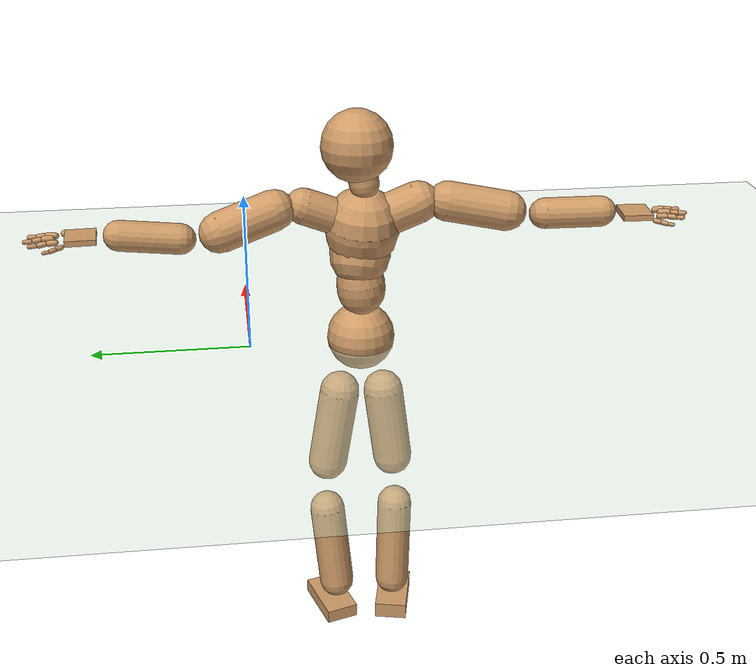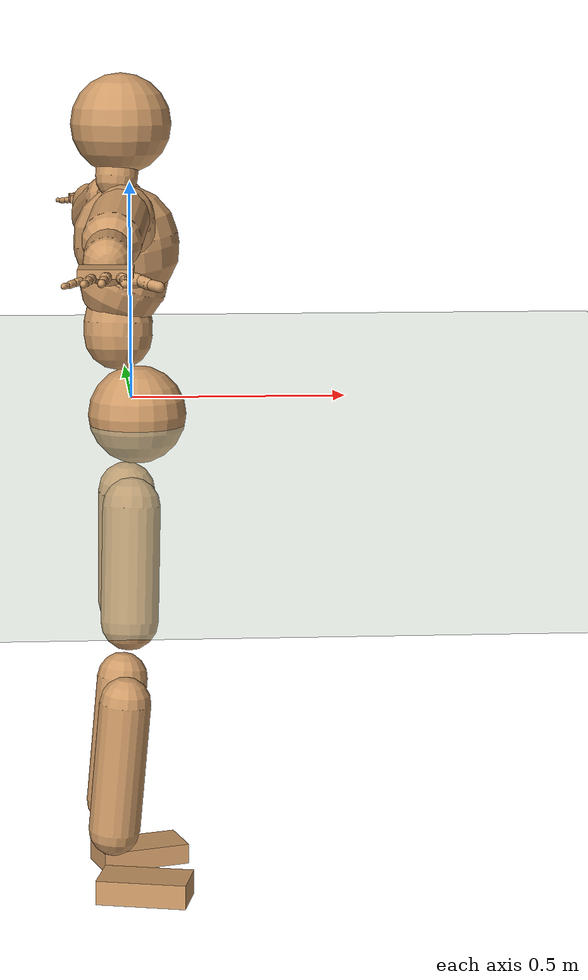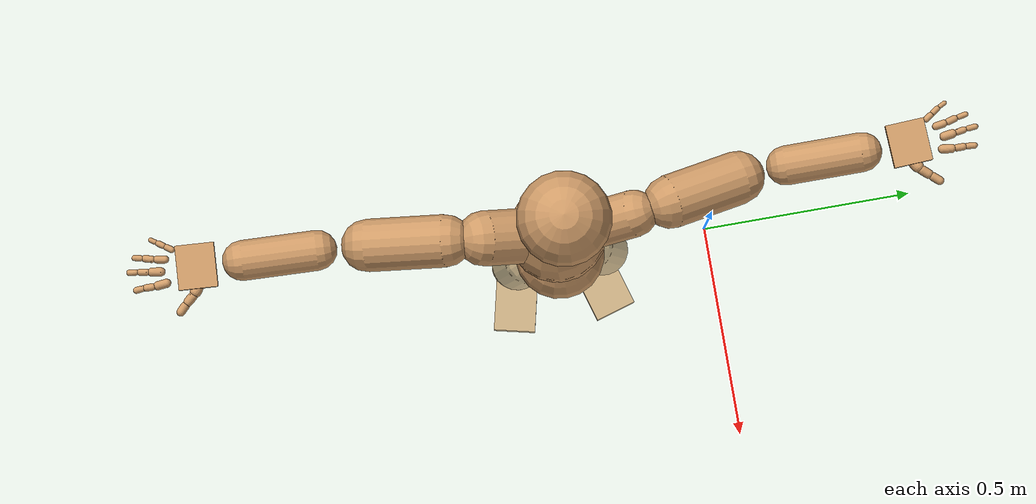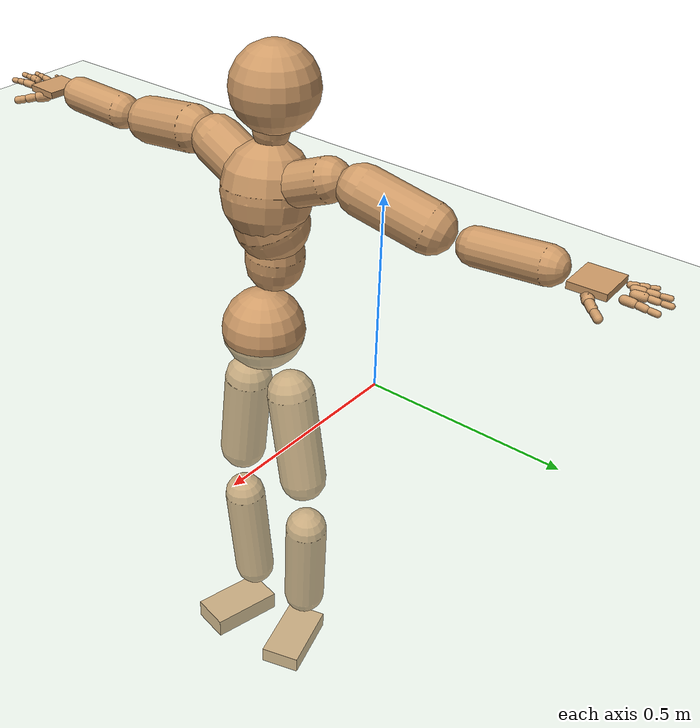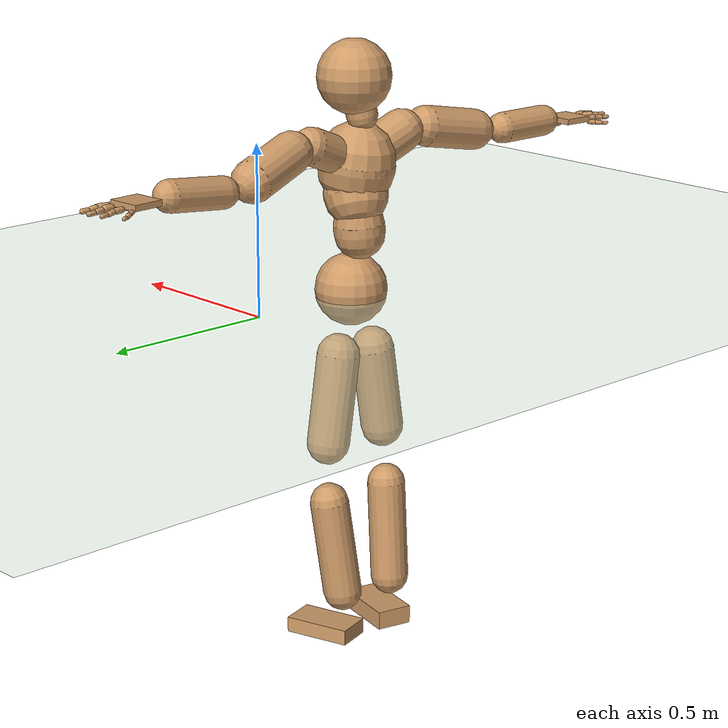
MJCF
<mujoco model="humanoid">
  <compiler coordinate="local" angle="radian"/>
  <default>
    <joint damping="0.0" armature="0.01" stiffness="0.0" limited="true"/>
    <geom conaffinity="1" condim="3" contype="7" margin="0.001" rgba="0.8 0.6 .4 1"/>
  </default>
  <asset>
    <texture type="skybox" builtin="gradient" rgb1=".4 .5 .6" rgb2="0 0 0" width="100" height="100"/>
    <texture builtin="flat" height="1278" mark="cross" markrgb="1 1 1" name="texgeom" random="0.01" rgb1="0.8 0.6 0.4" rgb2="0.8 0.6 0.4" type="cube" width="127"/>
    <texture builtin="checker" height="100" name="texplane" rgb1="0 0 0" rgb2="0.8 0.8 0.8" type="2d" width="100"/>
    <material name="MatPlane" reflectance="0.5" shininess="1" specular="1" texrepeat="60 60" texture="texplane"/>
    <material name="geom" texture="texgeom" texuniform="true"/>
  </asset>
  <worldbody>
    <light cutoff="100" diffuse="1 1 1" dir="-0 0 -1.3" directional="true" exponent="1" pos="0 0 1.3" specular=".1 .1 .1"/>
    <geom conaffinity="1" condim="3" name="floor" pos="0 0 0" rgba="0.8 0.9 0.8 1" size="100 100 .2" type="plane" material="MatPlane"/>
    <body name="Pelvis" pos="0.0014 -0.3528 0.0197">
      <freejoint name="Pelvis"/>
      <geom type="sphere" contype="1" conaffinity="1" density="500" size="0.1079" pos="0.0000 0.0000 0.0000" name="Pelvis"/>
      <body name="L_Hip" pos="-0.0219 0.0578 -0.096">
        <joint name="L_Hip_x" type="hinge" pos="0 0 0" axis="1 0 0" stiffness="800" damping="80" armature="0.02" range="-180.0000 180.0000"/>
        <joint name="L_Hip_y" type="hinge" pos="0 0 0" axis="0 1 0" stiffness="800" damping="80" armature="0.02" range="-180.0000 180.0000"/>
        <joint name="L_Hip_z" type="hinge" pos="0 0 0" axis="0 0 1" stiffness="800" damping="80" armature="0.02" range="-180.0000 180.0000"/>
        <geom type="capsule" contype="1" conaffinity="1" density="500" fromto="-0.0005 0.0143 -0.0877 -0.0019 0.0572 -0.3508" size="0.0635" name="L_Hip"/>
        <body name="L_Knee" pos="-0.0024 0.0715 -0.4385">
          <joint name="L_Knee_x" type="hinge" pos="0 0 0" axis="1 0 0" stiffness="800" damping="80" armature="0.02" range="-180.0000 180.0000"/>
          <joint name="L_Knee_y" type="hinge" pos="0 0 0" axis="0 1 0" stiffness="800" damping="80" armature="0.02" range="-180.0000 180.0000"/>
          <joint name="L_Knee_z" type="hinge" pos="0 0 0" axis="0 0 1" stiffness="800" damping="80" armature="0.02" range="-180.0000 180.0000"/>
          <geom type="capsule" contype="1" conaffinity="1" density="500" fromto="-0.0090 -0.0089 -0.0953 -0.0358 -0.0355 -0.3810" size="0.0576" name="L_Knee"/>
          <body name="L_Ankle" pos="-0.0448 -0.0444 -0.4763">
            <joint name="L_Ankle_x" type="hinge" pos="0 0 0" axis="1 0 0" stiffness="800" damping="80" armature="0.02" range="-180.0000 180.0000"/>
            <joint name="L_Ankle_y" type="hinge" pos="0 0 0" axis="0 1 0" stiffness="800" damping="80" armature="0.02" range="-180.0000 180.0000"/>
            <joint name="L_Ankle_z" type="hinge" pos="0 0 0" axis="0 0 1" stiffness="800" damping="80" armature="0.02" range="-180.0000 180.0000"/>
            <geom type="box" contype="1" conaffinity="1" density="500" pos="0.0724 0.0216 -0.0341" size="0.1013 0.0543 0.023" quat="0.9895 0.0000 0.0000 0.1445" name="L_Ankle"/>
            <body name="L_Toe" pos="0.1447 0.0432 -0.0682">
              <joint name="L_Toe_x" type="hinge" pos="0 0 0" axis="1 0 0" stiffness="500" damping="50" armature="0.02" range="-180.0000 180.0000"/>
              <joint name="L_Toe_y" type="hinge" pos="0 0 0" axis="0 1 0" stiffness="500" damping="50" armature="0.02" range="-180.0000 180.0000"/>
              <joint name="L_Toe_z" type="hinge" pos="0 0 0" axis="0 0 1" stiffness="500" damping="50" armature="0.02" range="-180.0000 180.0000"/>
              <geom type="box" contype="1" conaffinity="1" density="500" pos="0.0000 0.0000 0.0336" size="0.0011 0.0026 0.0011" quat="0.9889 0.0000 0.0000 0.1488" name="L_Toe"/>
            </body>
          </body>
        </body>
      </body>
      <body name="R_Hip" pos="-0.014 -0.0602 -0.1075">
        <joint name="R_Hip_x" type="hinge" pos="0 0 0" axis="1 0 0" stiffness="800" damping="80" armature="0.02" range="-180.0000 180.0000"/>
        <joint name="R_Hip_y" type="hinge" pos="0 0 0" axis="0 1 0" stiffness="800" damping="80" armature="0.02" range="-180.0000 180.0000"/>
        <joint name="R_Hip_z" type="hinge" pos="0 0 0" axis="0 0 1" stiffness="800" damping="80" armature="0.02" range="-180.0000 180.0000"/>
        <geom type="capsule" contype="1" conaffinity="1" density="500" fromto="-0.0023 -0.0108 -0.0839 -0.0092 -0.0433 -0.3355" size="0.0634" name="R_Hip"/>
        <body name="R_Knee" pos="-0.0115 -0.0541 -0.4194">
          <joint name="R_Knee_x" type="hinge" pos="0 0 0" axis="1 0 0" stiffness="800" damping="80" armature="0.02" range="-180.0000 180.0000"/>
          <joint name="R_Knee_y" type="hinge" pos="0 0 0" axis="0 1 0" stiffness="800" damping="80" armature="0.02" range="-180.0000 180.0000"/>
          <joint name="R_Knee_z" type="hinge" pos="0 0 0" axis="0 0 1" stiffness="800" damping="80" armature="0.02" range="-180.0000 180.0000"/>
          <geom type="capsule" contype="1" conaffinity="1" density="500" fromto="-0.0086 0.0032 -0.0984 -0.0344 0.0128 -0.3935" size="0.0571" name="R_Knee"/>
          <body name="R_Ankle" pos="-0.043 0.0159 -0.4919">
            <joint name="R_Ankle_x" type="hinge" pos="0 0 0" axis="1 0 0" stiffness="800" damping="80" armature="0.02" range="-180.0000 180.0000"/>
            <joint name="R_Ankle_y" type="hinge" pos="0 0 0" axis="0 1 0" stiffness="800" damping="80" armature="0.02" range="-180.0000 180.0000"/>
            <joint name="R_Ankle_z" type="hinge" pos="0 0 0" axis="0 0 1" stiffness="800" damping="80" armature="0.02" range="-180.0000 180.0000"/>
            <geom type="box" contype="1" conaffinity="1" density="500" pos="0.0759 -0.0175 -0.0331" size="0.1013 0.0543 0.0276" quat="0.9936 0.0000 0.0000 -0.1129" name="R_Ankle"/>
            <body name="R_Toe" pos="0.1517 -0.0349 -0.0663">
              <joint name="R_Toe_x" type="hinge" pos="0 0 0" axis="1 0 0" stiffness="500" damping="50" armature="0.02" range="-180.0000 180.0000"/>
              <joint name="R_Toe_y" type="hinge" pos="0 0 0" axis="0 1 0" stiffness="500" damping="50" armature="0.02" range="-180.0000 180.0000"/>
              <joint name="R_Toe_z" type="hinge" pos="0 0 0" axis="0 0 1" stiffness="500" damping="50" armature="0.02" range="-180.0000 180.0000"/>
              <geom type="box" contype="1" conaffinity="1" density="500" pos="0.0000 0.0000 0.0280" size="0.0011 0.0026 0.0011" quat="0.9944 0.0000 0.0000 -0.1053" name="R_Toe"/>
            </body>
          </body>
        </body>
      </body>
      <body name="Torso" pos="-0.0416 -0.0012 0.1154">
        <joint name="Torso_x" type="hinge" pos="0 0 0" axis="1 0 0" stiffness="1000" damping="100" armature="0.02" range="-180.0000 180.0000"/>
        <joint name="Torso_y" type="hinge" pos="0 0 0" axis="0 1 0" stiffness="1000" damping="100" armature="0.02" range="-180.0000 180.0000"/>
        <joint name="Torso_z" type="hinge" pos="0 0 0" axis="0 0 1" stiffness="1000" damping="100" armature="0.02" range="-180.0000 180.0000"/>
        <geom type="capsule" contype="1" conaffinity="1" density="500" fromto="0.0016 0.0067 0.0895 0.0010 0.0044 0.0597" size="0.0754" name="Torso"/>
        <body name="Spine" pos="0.0026 0.0111 0.1492">
          <joint name="Spine_x" type="hinge" pos="0 0 0" axis="1 0 0" stiffness="1000" damping="100" armature="0.02" range="-180.0000 180.0000"/>
          <joint name="Spine_y" type="hinge" pos="0 0 0" axis="0 1 0" stiffness="1000" damping="100" armature="0.02" range="-180.0000 180.0000"/>
          <joint name="Spine_z" type="hinge" pos="0 0 0" axis="0 0 1" stiffness="1000" damping="100" armature="0.02" range="-180.0000 180.0000"/>
          <geom type="capsule" contype="1" conaffinity="1" density="500" fromto="0.0149 -0.0059 0.0347 0.0100 -0.0039 0.0231" size="0.0948" name="Spine"/>
          <body name="Chest" pos="0.0249 -0.0099 0.0579">
            <joint name="Chest_x" type="hinge" pos="0 0 0" axis="1 0 0" stiffness="1000" damping="100" armature="0.02" range="-180.0000 180.0000"/>
            <joint name="Chest_y" type="hinge" pos="0 0 0" axis="0 1 0" stiffness="1000" damping="100" armature="0.02" range="-180.0000 180.0000"/>
            <joint name="Chest_z" type="hinge" pos="0 0 0" axis="0 0 1" stiffness="1000" damping="100" armature="0.02" range="-180.0000 180.0000"/>
            <geom type="capsule" contype="1" conaffinity="1" density="500" fromto="-0.0091 -0.0032 0.0646 -0.0060 -0.0021 0.0430" size="0.1143" name="Chest"/>
            <body name="Neck" pos="-0.0306 -0.0112 0.1671">
              <joint name="Neck_x" type="hinge" pos="0 0 0" axis="1 0 0" stiffness="500" damping="50" armature="0.02" range="-180.0000 180.0000"/>
              <joint name="Neck_y" type="hinge" pos="0 0 0" axis="0 1 0" stiffness="500" damping="50" armature="0.02" range="-180.0000 180.0000"/>
              <joint name="Neck_z" type="hinge" pos="0 0 0" axis="0 0 1" stiffness="500" damping="50" armature="0.02" range="-180.0000 180.0000"/>
              <geom type="capsule" contype="1" conaffinity="1" density="500" fromto="0.0027 0.0051 0.0286 0.0107 0.0204 0.1144" size="0.0456" name="Neck"/>
              <body name="Head" pos="0.0134 0.0255 0.143">
                <joint name="Head_x" type="hinge" pos="0 0 0" axis="1 0 0" stiffness="500" damping="50" armature="0.02" range="-180.0000 180.0000"/>
                <joint name="Head_y" type="hinge" pos="0 0 0" axis="0 1 0" stiffness="500" damping="50" armature="0.02" range="-180.0000 180.0000"/>
                <joint name="Head_z" type="hinge" pos="0 0 0" axis="0 0 1" stiffness="500" damping="50" armature="0.02" range="-180.0000 180.0000"/>
                <geom type="sphere" contype="1" conaffinity="1" density="500" size="0.1090" pos="0.0000 0.0000 0.0000" name="Head"/>
              </body>
            </body>
            <body name="L_Thorax" pos="-0.0055 0.0474 0.0777">
              <joint name="L_Thorax_x" type="hinge" pos="0 0 0" axis="1 0 0" stiffness="500" damping="50" armature="0.02" range="-180.0000 180.0000"/>
              <joint name="L_Thorax_y" type="hinge" pos="0 0 0" axis="0 1 0" stiffness="500" damping="50" armature="0.02" range="-180.0000 180.0000"/>
              <joint name="L_Thorax_z" type="hinge" pos="0 0 0" axis="0 0 1" stiffness="500" damping="50" armature="0.02" range="-180.0000 180.0000"/>
              <geom type="capsule" contype="1" conaffinity="1" density="500" fromto="-0.0025 0.0323 0.0132 -0.0100 0.1291 0.0527" size="0.0551" name="L_Thorax"/>
              <body name="L_Shoulder" pos="-0.0125 0.1614 0.0659">
                <joint name="L_Shoulder_x" type="hinge" pos="0 0 0" axis="1 0 0" stiffness="500" damping="50" armature="0.02" range="-180.0000 180.0000"/>
                <joint name="L_Shoulder_y" type="hinge" pos="0 0 0" axis="0 1 0" stiffness="500" damping="50" armature="0.02" range="-180.0000 180.0000"/>
                <joint name="L_Shoulder_z" type="hinge" pos="0 0 0" axis="0 0 1" stiffness="500" damping="50" armature="0.02" range="-180.0000 180.0000"/>
                <geom type="capsule" contype="1" conaffinity="1" density="500" fromto="-0.0106 0.0552 -0.0170 -0.0424 0.2208 -0.0679" size="0.0621" name="L_Shoulder"/>
                <body name="L_Elbow" pos="-0.053 0.276 -0.0849">
                  <joint name="L_Elbow_x" type="hinge" pos="0 0 0" axis="1 0 0" stiffness="500" damping="50" armature="0.02" range="-720.0000 720.0000"/>
                  <joint name="L_Elbow_y" type="hinge" pos="0 0 0" axis="0 1 0" stiffness="500" damping="50" armature="0.02" range="-720.0000 720.0000"/>
                  <joint name="L_Elbow_z" type="hinge" pos="0 0 0" axis="0 0 1" stiffness="500" damping="50" armature="0.02" range="-720.0000 720.0000"/>
                  <geom type="capsule" contype="1" conaffinity="1" density="500" fromto="0.0004 0.0594 0.0060 0.0016 0.2375 0.0240" size="0.0458" name="L_Elbow"/>
                  <body name="L_Wrist" pos="0.002 0.2969 0.03">
                    <joint name="L_Wrist_x" type="hinge" pos="0 0 0" axis="1 0 0" stiffness="300" damping="30" armature="0.02" range="-180.0000 180.0000"/>
                    <joint name="L_Wrist_y" type="hinge" pos="0 0 0" axis="0 1 0" stiffness="300" damping="30" armature="0.02" range="-180.0000 180.0000"/>
                    <joint name="L_Wrist_z" type="hinge" pos="0 0 0" axis="0 0 1" stiffness="300" damping="30" armature="0.02" range="-180.0000 180.0000"/>
                    <geom type="box" contype="1" conaffinity="1" density="500" pos="-0.0026 0.0502 -0.0057" size="0.0452 0.0498 0.0086" quat="0.7255 0.0000 0.0000 -0.6883" name="L_Wrist"/>
                    <body name="L_Index1" pos="0.0234 0.1175 -0.0081">
                      <joint name="L_Index1_x" type="hinge" pos="0 0 0" axis="1 0 0" stiffness="100" damping="10" armature="0.02" range="-180.0000 180.0000"/>
                      <joint name="L_Index1_y" type="hinge" pos="0 0 0" axis="0 1 0" stiffness="100" damping="10" armature="0.02" range="-180.0000 180.0000"/>
                      <joint name="L_Index1_z" type="hinge" pos="0 0 0" axis="0 0 1" stiffness="100" damping="10" armature="0.02" range="-180.0000 180.0000"/>
                      <geom type="capsule" contype="1" conaffinity="1" density="500" fromto="0.0008 0.0070 0.0004 0.0031 0.0282 0.0014" size="0.0102" name="L_Index1"/>
                      <body name="L_Index2" pos="0.0038 0.0352 0.0018">
                        <joint name="L_Index2_x" type="hinge" pos="0 0 0" axis="1 0 0" stiffness="100" damping="10" armature="0.02" range="-180.0000 180.0000"/>
                        <joint name="L_Index2_y" type="hinge" pos="0 0 0" axis="0 1 0" stiffness="100" damping="10" armature="0.02" range="-180.0000 180.0000"/>
                        <joint name="L_Index2_z" type="hinge" pos="0 0 0" axis="0 0 1" stiffness="100" damping="10" armature="0.02" range="-180.0000 180.0000"/>
                        <geom type="capsule" contype="1" conaffinity="1" density="500" fromto="-0.0001 0.0050 -0.0006 -0.0002 0.0200 -0.0023" size="0.0083" name="L_Index2"/>
                        <body name="L_Index3" pos="-0.0003 0.0249 -0.0029">
                          <joint name="L_Index3_x" type="hinge" pos="0 0 0" axis="1 0 0" stiffness="100" damping="10" armature="0.02" range="-180.0000 180.0000"/>
                          <joint name="L_Index3_y" type="hinge" pos="0 0 0" axis="0 1 0" stiffness="100" damping="10" armature="0.02" range="-180.0000 180.0000"/>
                          <joint name="L_Index3_z" type="hinge" pos="0 0 0" axis="0 0 1" stiffness="100" damping="10" armature="0.02" range="-180.0000 180.0000"/>
                          <geom type="capsule" contype="1" conaffinity="1" density="500" fromto="0.0003 0.0054 -0.0002 0.0014 0.0216 -0.0007" size="0.0072" name="L_Index3"/>
                        </body>
                      </body>
                    </body>
                    <body name="L_Middle1" pos="-0.0028 0.1261 -0.0052">
                      <joint name="L_Middle1_x" type="hinge" pos="0 0 0" axis="1 0 0" stiffness="100" damping="10" armature="0.02" range="-180.0000 180.0000"/>
                      <joint name="L_Middle1_y" type="hinge" pos="0 0 0" axis="0 1 0" stiffness="100" damping="10" armature="0.02" range="-180.0000 180.0000"/>
                      <joint name="L_Middle1_z" type="hinge" pos="0 0 0" axis="0 0 1" stiffness="100" damping="10" armature="0.02" range="-180.0000 180.0000"/>
                      <geom type="capsule" contype="1" conaffinity="1" density="500" fromto="-0.0009 0.0068 0.0001 -0.0037 0.0271 0.0004" size="0.0103" name="L_Middle1"/>
                      <body name="L_Middle2" pos="-0.0046 0.0338 0.0005">
                        <joint name="L_Middle2_x" type="hinge" pos="0 0 0" axis="1 0 0" stiffness="100" damping="10" armature="0.02" range="-180.0000 180.0000"/>
                        <joint name="L_Middle2_y" type="hinge" pos="0 0 0" axis="0 1 0" stiffness="100" damping="10" armature="0.02" range="-180.0000 180.0000"/>
                        <joint name="L_Middle2_z" type="hinge" pos="0 0 0" axis="0 0 1" stiffness="100" damping="10" armature="0.02" range="-180.0000 180.0000"/>
                        <geom type="capsule" contype="1" conaffinity="1" density="500" fromto="-0.0009 0.0052 -0.0006 -0.0037 0.0208 -0.0023" size="0.0076" name="L_Middle2"/>
                        <body name="L_Middle3" pos="-0.0047 0.026 -0.0029">
                          <joint name="L_Middle3_x" type="hinge" pos="0 0 0" axis="1 0 0" stiffness="100" damping="10" armature="0.02" range="-180.0000 180.0000"/>
                          <joint name="L_Middle3_y" type="hinge" pos="0 0 0" axis="0 1 0" stiffness="100" damping="10" armature="0.02" range="-180.0000 180.0000"/>
                          <joint name="L_Middle3_z" type="hinge" pos="0 0 0" axis="0 0 1" stiffness="100" damping="10" armature="0.02" range="-180.0000 180.0000"/>
                          <geom type="capsule" contype="1" conaffinity="1" density="500" fromto="-0.0005 0.0056 -0.0002 -0.0021 0.0224 -0.0007" size="0.0068" name="L_Middle3"/>
                        </body>
                      </body>
                    </body>
                    <body name="L_Pinky1" pos="-0.0481 0.0977 -0.0147">
                      <joint name="L_Pinky1_x" type="hinge" pos="0 0 0" axis="1 0 0" stiffness="100" damping="10" armature="0.02" range="-180.0000 180.0000"/>
                      <joint name="L_Pinky1_y" type="hinge" pos="0 0 0" axis="0 1 0" stiffness="100" damping="10" armature="0.02" range="-180.0000 180.0000"/>
                      <joint name="L_Pinky1_z" type="hinge" pos="0 0 0" axis="0 0 1" stiffness="100" damping="10" armature="0.02" range="-180.0000 180.0000"/>
                      <geom type="capsule" contype="1" conaffinity="1" density="500" fromto="-0.0026 0.0036 -0.0004 -0.0103 0.0144 -0.0014" size="0.0074" name="L_Pinky1"/>
                      <body name="L_Pinky2" pos="-0.0129 0.018 -0.0018">
                        <joint name="L_Pinky2_x" type="hinge" pos="0 0 0" axis="1 0 0" stiffness="100" damping="10" armature="0.02" range="-180.0000 180.0000"/>
                        <joint name="L_Pinky2_y" type="hinge" pos="0 0 0" axis="0 1 0" stiffness="100" damping="10" armature="0.02" range="-180.0000 180.0000"/>
                        <joint name="L_Pinky2_z" type="hinge" pos="0 0 0" axis="0 0 1" stiffness="100" damping="10" armature="0.02" range="-180.0000 180.0000"/>
                        <geom type="capsule" contype="1" conaffinity="1" density="500" fromto="-0.0024 0.0035 -0.0005 -0.0096 0.0140 -0.0018" size="0.007" name="L_Pinky2"/>
                        <body name="L_Pinky3" pos="-0.012 0.0175 -0.0023">
                          <joint name="L_Pinky3_x" type="hinge" pos="0 0 0" axis="1 0 0" stiffness="100" damping="10" armature="0.02" range="-180.0000 180.0000"/>
                          <joint name="L_Pinky3_y" type="hinge" pos="0 0 0" axis="0 1 0" stiffness="100" damping="10" armature="0.02" range="-180.0000 180.0000"/>
                          <joint name="L_Pinky3_z" type="hinge" pos="0 0 0" axis="0 0 1" stiffness="100" damping="10" armature="0.02" range="-180.0000 180.0000"/>
                          <geom type="capsule" contype="1" conaffinity="1" density="500" fromto="-0.0020 0.0039 -0.0001 -0.0080 0.0156 -0.0002" size="0.0054" name="L_Pinky3"/>
                        </body>
                      </body>
                    </body>
                    <body name="L_Ring1" pos="-0.0292 0.1127 -0.0086">
                      <joint name="L_Ring1_x" type="hinge" pos="0 0 0" axis="1 0 0" stiffness="100" damping="10" armature="0.02" range="-180.0000 180.0000"/>
                      <joint name="L_Ring1_y" type="hinge" pos="0 0 0" axis="0 1 0" stiffness="100" damping="10" armature="0.02" range="-180.0000 180.0000"/>
                      <joint name="L_Ring1_z" type="hinge" pos="0 0 0" axis="0 0 1" stiffness="100" damping="10" armature="0.02" range="-180.0000 180.0000"/>
                      <geom type="capsule" contype="1" conaffinity="1" density="500" fromto="-0.0011 0.0063 0.0001 -0.0043 0.0252 0.0005" size="0.0088" name="L_Ring1"/>
                      <body name="L_Ring2" pos="-0.0054 0.0315 0.0006">
                        <joint name="L_Ring2_x" type="hinge" pos="0 0 0" axis="1 0 0" stiffness="100" damping="10" armature="0.02" range="-180.0000 180.0000"/>
                        <joint name="L_Ring2_y" type="hinge" pos="0 0 0" axis="0 1 0" stiffness="100" damping="10" armature="0.02" range="-180.0000 180.0000"/>
                        <joint name="L_Ring2_z" type="hinge" pos="0 0 0" axis="0 0 1" stiffness="100" damping="10" armature="0.02" range="-180.0000 180.0000"/>
                        <geom type="capsule" contype="1" conaffinity="1" density="500" fromto="-0.0014 0.0051 -0.0005 -0.0058 0.0203 -0.0021" size="0.0081" name="L_Ring2"/>
                        <body name="L_Ring3" pos="-0.0072 0.0254 -0.0026">
                          <joint name="L_Ring3_x" type="hinge" pos="0 0 0" axis="1 0 0" stiffness="100" damping="10" armature="0.02" range="-180.0000 180.0000"/>
                          <joint name="L_Ring3_y" type="hinge" pos="0 0 0" axis="0 1 0" stiffness="100" damping="10" armature="0.02" range="-180.0000 180.0000"/>
                          <joint name="L_Ring3_z" type="hinge" pos="0 0 0" axis="0 0 1" stiffness="100" damping="10" armature="0.02" range="-180.0000 180.0000"/>
                          <geom type="capsule" contype="1" conaffinity="1" density="500" fromto="-0.0010 0.0055 -0.0001 -0.0042 0.0219 -0.0005" size="0.0064" name="L_Ring3"/>
                        </body>
                      </body>
                    </body>
                    <body name="L_Thumb1" pos="0.0303 0.0475 -0.0204">
                      <joint name="L_Thumb1_x" type="hinge" pos="0 0 0" axis="1 0 0" stiffness="100" damping="10" armature="0.02" range="-180.0000 180.0000"/>
                      <joint name="L_Thumb1_y" type="hinge" pos="0 0 0" axis="0 1 0" stiffness="100" damping="10" armature="0.02" range="-180.0000 180.0000"/>
                      <joint name="L_Thumb1_z" type="hinge" pos="0 0 0" axis="0 0 1" stiffness="100" damping="10" armature="0.02" range="-180.0000 180.0000"/>
                      <geom type="capsule" contype="1" conaffinity="1" density="500" fromto="0.0058 0.0038 0.0004 0.0233 0.0150 0.0016" size="0.0138" name="L_Thumb1"/>
                      <body name="L_Thumb2" pos="0.0291 0.0188 0.002">
                        <joint name="L_Thumb2_x" type="hinge" pos="0 0 0" axis="1 0 0" stiffness="100" damping="10" armature="0.02" range="-180.0000 180.0000"/>
                        <joint name="L_Thumb2_y" type="hinge" pos="0 0 0" axis="0 1 0" stiffness="100" damping="10" armature="0.02" range="-180.0000 180.0000"/>
                        <joint name="L_Thumb2_z" type="hinge" pos="0 0 0" axis="0 0 1" stiffness="100" damping="10" armature="0.02" range="-180.0000 180.0000"/>
                        <geom type="capsule" contype="1" conaffinity="1" density="500" fromto="0.0036 0.0044 -0.0011 0.0146 0.0177 -0.0043" size="0.011" name="L_Thumb2"/>
                        <body name="L_Thumb3" pos="0.0182 0.0221 -0.0054">
                          <joint name="L_Thumb3_x" type="hinge" pos="0 0 0" axis="1 0 0" stiffness="100" damping="10" armature="0.02" range="-180.0000 180.0000"/>
                          <joint name="L_Thumb3_y" type="hinge" pos="0 0 0" axis="0 1 0" stiffness="100" damping="10" armature="0.02" range="-180.0000 180.0000"/>
                          <joint name="L_Thumb3_z" type="hinge" pos="0 0 0" axis="0 0 1" stiffness="100" damping="10" armature="0.02" range="-180.0000 180.0000"/>
                          <geom type="capsule" contype="1" conaffinity="1" density="500" fromto="0.0040 0.0048 -0.0007 0.0162 0.0193 -0.0027" size="0.01" name="L_Thumb3"/>
                        </body>
                      </body>
                    </body>
                  </body>
                </body>
              </body>
            </body>
            <body name="R_Thorax" pos="-0.0092 -0.0519 0.0781">
              <joint name="R_Thorax_x" type="hinge" pos="0 0 0" axis="1 0 0" stiffness="500" damping="50" armature="0.02" range="-180.0000 180.0000"/>
              <joint name="R_Thorax_y" type="hinge" pos="0 0 0" axis="0 1 0" stiffness="500" damping="50" armature="0.02" range="-180.0000 180.0000"/>
              <joint name="R_Thorax_z" type="hinge" pos="0 0 0" axis="0 0 1" stiffness="500" damping="50" armature="0.02" range="-180.0000 180.0000"/>
              <geom type="capsule" contype="1" conaffinity="1" density="500" fromto="-0.0022 -0.0298 0.0128 -0.0088 -0.1191 0.0512" size="0.0645" name="R_Thorax"/>
              <body name="R_Shoulder" pos="-0.011 -0.1488 0.0641">
                <joint name="R_Shoulder_x" type="hinge" pos="0 0 0" axis="1 0 0" stiffness="500" damping="50" armature="0.02" range="-180.0000 180.0000"/>
                <joint name="R_Shoulder_y" type="hinge" pos="0 0 0" axis="0 1 0" stiffness="500" damping="50" armature="0.02" range="-180.0000 180.0000"/>
                <joint name="R_Shoulder_z" type="hinge" pos="0 0 0" axis="0 0 1" stiffness="500" damping="50" armature="0.02" range="-180.0000 180.0000"/>
                <geom type="capsule" contype="1" conaffinity="1" density="500" fromto="-0.0075 -0.0593 -0.0103 -0.0299 -0.2373 -0.0411" size="0.0612" name="R_Shoulder"/>
                <body name="R_Elbow" pos="-0.0374 -0.2967 -0.0514">
                  <joint name="R_Elbow_x" type="hinge" pos="0 0 0" axis="1 0 0" stiffness="500" damping="50" armature="0.02" range="-720.0000 720.0000"/>
                  <joint name="R_Elbow_y" type="hinge" pos="0 0 0" axis="0 1 0" stiffness="500" damping="50" armature="0.02" range="-720.0000 720.0000"/>
                  <joint name="R_Elbow_z" type="hinge" pos="0 0 0" axis="0 0 1" stiffness="500" damping="50" armature="0.02" range="-720.0000 720.0000"/>
                  <geom type="capsule" contype="1" conaffinity="1" density="500" fromto="-0.0021 -0.0576 0.0004 -0.0084 -0.2304 0.0015" size="0.0469" name="R_Elbow"/>
                  <body name="R_Wrist" pos="-0.0106 -0.288 0.0019">
                    <joint name="R_Wrist_x" type="hinge" pos="0 0 0" axis="1 0 0" stiffness="300" damping="30" armature="0.02" range="-180.0000 180.0000"/>
                    <joint name="R_Wrist_y" type="hinge" pos="0 0 0" axis="0 1 0" stiffness="300" damping="30" armature="0.02" range="-180.0000 180.0000"/>
                    <joint name="R_Wrist_z" type="hinge" pos="0 0 0" axis="0 0 1" stiffness="300" damping="30" armature="0.02" range="-180.0000 180.0000"/>
                    <geom type="box" contype="1" conaffinity="1" density="500" pos="-0.0031 -0.0498 -0.0077" size="0.0452 0.0514 0.0087" quat="0.7288 0.0000 0.0000 0.6847" name="R_Wrist"/>
                    <body name="R_Index1" pos="0.0225 -0.1168 -0.012">
                      <joint name="R_Index1_x" type="hinge" pos="0 0 0" axis="1 0 0" stiffness="100" damping="10" armature="0.02" range="-180.0000 180.0000"/>
                      <joint name="R_Index1_y" type="hinge" pos="0 0 0" axis="0 1 0" stiffness="100" damping="10" armature="0.02" range="-180.0000 180.0000"/>
                      <joint name="R_Index1_z" type="hinge" pos="0 0 0" axis="0 0 1" stiffness="100" damping="10" armature="0.02" range="-180.0000 180.0000"/>
                      <geom type="capsule" contype="1" conaffinity="1" density="500" fromto="0.0008 -0.0070 0.0004 0.0031 -0.0282 0.0014" size="0.0102" name="R_Index1"/>
                      <body name="R_Index2" pos="0.0038 -0.0352 0.0018">
                        <joint name="R_Index2_x" type="hinge" pos="0 0 0" axis="1 0 0" stiffness="100" damping="10" armature="0.02" range="-180.0000 180.0000"/>
                        <joint name="R_Index2_y" type="hinge" pos="0 0 0" axis="0 1 0" stiffness="100" damping="10" armature="0.02" range="-180.0000 180.0000"/>
                        <joint name="R_Index2_z" type="hinge" pos="0 0 0" axis="0 0 1" stiffness="100" damping="10" armature="0.02" range="-180.0000 180.0000"/>
                        <geom type="capsule" contype="1" conaffinity="1" density="500" fromto="-0.0001 -0.0050 -0.0006 -0.0002 -0.0200 -0.0023" size="0.0083" name="R_Index2"/>
                        <body name="R_Index3" pos="-0.0003 -0.0249 -0.0029">
                          <joint name="R_Index3_x" type="hinge" pos="0 0 0" axis="1 0 0" stiffness="100" damping="10" armature="0.02" range="-180.0000 180.0000"/>
                          <joint name="R_Index3_y" type="hinge" pos="0 0 0" axis="0 1 0" stiffness="100" damping="10" armature="0.02" range="-180.0000 180.0000"/>
                          <joint name="R_Index3_z" type="hinge" pos="0 0 0" axis="0 0 1" stiffness="100" damping="10" armature="0.02" range="-180.0000 180.0000"/>
                          <geom type="capsule" contype="1" conaffinity="1" density="500" fromto="0.0003 -0.0046 -0.0002 0.0014 -0.0184 -0.0007" size="0.0075" name="R_Index3"/>
                        </body>
                      </body>
                    </body>
                    <body name="R_Middle1" pos="-0.0037 -0.1254 -0.0091">
                      <joint name="R_Middle1_x" type="hinge" pos="0 0 0" axis="1 0 0" stiffness="100" damping="10" armature="0.02" range="-180.0000 180.0000"/>
                      <joint name="R_Middle1_y" type="hinge" pos="0 0 0" axis="0 1 0" stiffness="100" damping="10" armature="0.02" range="-180.0000 180.0000"/>
                      <joint name="R_Middle1_z" type="hinge" pos="0 0 0" axis="0 0 1" stiffness="100" damping="10" armature="0.02" range="-180.0000 180.0000"/>
                      <geom type="capsule" contype="1" conaffinity="1" density="500" fromto="-0.0009 -0.0068 0.0001 -0.0037 -0.0271 0.0004" size="0.0103" name="R_Middle1"/>
                      <body name="R_Middle2" pos="-0.0046 -0.0338 0.0005">
                        <joint name="R_Middle2_x" type="hinge" pos="0 0 0" axis="1 0 0" stiffness="100" damping="10" armature="0.02" range="-180.0000 180.0000"/>
                        <joint name="R_Middle2_y" type="hinge" pos="0 0 0" axis="0 1 0" stiffness="100" damping="10" armature="0.02" range="-180.0000 180.0000"/>
                        <joint name="R_Middle2_z" type="hinge" pos="0 0 0" axis="0 0 1" stiffness="100" damping="10" armature="0.02" range="-180.0000 180.0000"/>
                        <geom type="capsule" contype="1" conaffinity="1" density="500" fromto="-0.0009 -0.0052 -0.0006 -0.0037 -0.0208 -0.0023" size="0.0076" name="R_Middle2"/>
                        <body name="R_Middle3" pos="-0.0047 -0.026 -0.0029">
                          <joint name="R_Middle3_x" type="hinge" pos="0 0 0" axis="1 0 0" stiffness="100" damping="10" armature="0.02" range="-180.0000 180.0000"/>
                          <joint name="R_Middle3_y" type="hinge" pos="0 0 0" axis="0 1 0" stiffness="100" damping="10" armature="0.02" range="-180.0000 180.0000"/>
                          <joint name="R_Middle3_z" type="hinge" pos="0 0 0" axis="0 0 1" stiffness="100" damping="10" armature="0.02" range="-180.0000 180.0000"/>
                          <geom type="capsule" contype="1" conaffinity="1" density="500" fromto="-0.0005 -0.0048 -0.0002 -0.0021 -0.0192 -0.0007" size="0.0071" name="R_Middle3"/>
                        </body>
                      </body>
                    </body>
                    <body name="R_Pinky1" pos="-0.0491 -0.097 -0.0186">
                      <joint name="R_Pinky1_x" type="hinge" pos="0 0 0" axis="1 0 0" stiffness="100" damping="10" armature="0.02" range="-180.0000 180.0000"/>
                      <joint name="R_Pinky1_y" type="hinge" pos="0 0 0" axis="0 1 0" stiffness="100" damping="10" armature="0.02" range="-180.0000 180.0000"/>
                      <joint name="R_Pinky1_z" type="hinge" pos="0 0 0" axis="0 0 1" stiffness="100" damping="10" armature="0.02" range="-180.0000 180.0000"/>
                      <geom type="capsule" contype="1" conaffinity="1" density="500" fromto="-0.0026 -0.0036 -0.0004 -0.0103 -0.0144 -0.0014" size="0.0074" name="R_Pinky1"/>
                      <body name="R_Pinky2" pos="-0.0129 -0.018 -0.0018">
                        <joint name="R_Pinky2_x" type="hinge" pos="0 0 0" axis="1 0 0" stiffness="100" damping="10" armature="0.02" range="-180.0000 180.0000"/>
                        <joint name="R_Pinky2_y" type="hinge" pos="0 0 0" axis="0 1 0" stiffness="100" damping="10" armature="0.02" range="-180.0000 180.0000"/>
                        <joint name="R_Pinky2_z" type="hinge" pos="0 0 0" axis="0 0 1" stiffness="100" damping="10" armature="0.02" range="-180.0000 180.0000"/>
                        <geom type="capsule" contype="1" conaffinity="1" density="500" fromto="-0.0024 -0.0035 -0.0005 -0.0096 -0.0140 -0.0018" size="0.007" name="R_Pinky2"/>
                        <body name="R_Pinky3" pos="-0.012 -0.0175 -0.0023">
                          <joint name="R_Pinky3_x" type="hinge" pos="0 0 0" axis="1 0 0" stiffness="100" damping="10" armature="0.02" range="-180.0000 180.0000"/>
                          <joint name="R_Pinky3_y" type="hinge" pos="0 0 0" axis="0 1 0" stiffness="100" damping="10" armature="0.02" range="-180.0000 180.0000"/>
                          <joint name="R_Pinky3_z" type="hinge" pos="0 0 0" axis="0 0 1" stiffness="100" damping="10" armature="0.02" range="-180.0000 180.0000"/>
                          <geom type="capsule" contype="1" conaffinity="1" density="500" fromto="-0.0020 -0.0031 -0.0001 -0.0080 -0.0124 -0.0002" size="0.0056" name="R_Pinky3"/>
                        </body>
                      </body>
                    </body>
                    <body name="R_Ring1" pos="-0.0302 -0.112 -0.0125">
                      <joint name="R_Ring1_x" type="hinge" pos="0 0 0" axis="1 0 0" stiffness="100" damping="10" armature="0.02" range="-180.0000 180.0000"/>
                      <joint name="R_Ring1_y" type="hinge" pos="0 0 0" axis="0 1 0" stiffness="100" damping="10" armature="0.02" range="-180.0000 180.0000"/>
                      <joint name="R_Ring1_z" type="hinge" pos="0 0 0" axis="0 0 1" stiffness="100" damping="10" armature="0.02" range="-180.0000 180.0000"/>
                      <geom type="capsule" contype="1" conaffinity="1" density="500" fromto="-0.0011 -0.0063 0.0001 -0.0043 -0.0252 0.0005" size="0.0088" name="R_Ring1"/>
                      <body name="R_Ring2" pos="-0.0054 -0.0315 0.0006">
                        <joint name="R_Ring2_x" type="hinge" pos="0 0 0" axis="1 0 0" stiffness="100" damping="10" armature="0.02" range="-180.0000 180.0000"/>
                        <joint name="R_Ring2_y" type="hinge" pos="0 0 0" axis="0 1 0" stiffness="100" damping="10" armature="0.02" range="-180.0000 180.0000"/>
                        <joint name="R_Ring2_z" type="hinge" pos="0 0 0" axis="0 0 1" stiffness="100" damping="10" armature="0.02" range="-180.0000 180.0000"/>
                        <geom type="capsule" contype="1" conaffinity="1" density="500" fromto="-0.0014 -0.0051 -0.0005 -0.0058 -0.0203 -0.0021" size="0.0081" name="R_Ring2"/>
                        <body name="R_Ring3" pos="-0.0072 -0.0254 -0.0026">
                          <joint name="R_Ring3_x" type="hinge" pos="0 0 0" axis="1 0 0" stiffness="100" damping="10" armature="0.02" range="-180.0000 180.0000"/>
                          <joint name="R_Ring3_y" type="hinge" pos="0 0 0" axis="0 1 0" stiffness="100" damping="10" armature="0.02" range="-180.0000 180.0000"/>
                          <joint name="R_Ring3_z" type="hinge" pos="0 0 0" axis="0 0 1" stiffness="100" damping="10" armature="0.02" range="-180.0000 180.0000"/>
                          <geom type="capsule" contype="1" conaffinity="1" density="500" fromto="-0.0010 -0.0047 -0.0001 -0.0042 -0.0187 -0.0005" size="0.0066" name="R_Ring3"/>
                        </body>
                      </body>
                    </body>
                    <body name="R_Thumb1" pos="0.0294 -0.0467 -0.0243">
                      <joint name="R_Thumb1_x" type="hinge" pos="0 0 0" axis="1 0 0" stiffness="100" damping="10" armature="0.02" range="-180.0000 180.0000"/>
                      <joint name="R_Thumb1_y" type="hinge" pos="0 0 0" axis="0 1 0" stiffness="100" damping="10" armature="0.02" range="-180.0000 180.0000"/>
                      <joint name="R_Thumb1_z" type="hinge" pos="0 0 0" axis="0 0 1" stiffness="100" damping="10" armature="0.02" range="-180.0000 180.0000"/>
                      <geom type="capsule" contype="1" conaffinity="1" density="500" fromto="0.0058 -0.0038 0.0004 0.0233 -0.0150 0.0016" size="0.0138" name="R_Thumb1"/>
                      <body name="R_Thumb2" pos="0.0291 -0.0188 0.002">
                        <joint name="R_Thumb2_x" type="hinge" pos="0 0 0" axis="1 0 0" stiffness="100" damping="10" armature="0.02" range="-180.0000 180.0000"/>
                        <joint name="R_Thumb2_y" type="hinge" pos="0 0 0" axis="0 1 0" stiffness="100" damping="10" armature="0.02" range="-180.0000 180.0000"/>
                        <joint name="R_Thumb2_z" type="hinge" pos="0 0 0" axis="0 0 1" stiffness="100" damping="10" armature="0.02" range="-180.0000 180.0000"/>
                        <geom type="capsule" contype="1" conaffinity="1" density="500" fromto="0.0036 -0.0044 -0.0011 0.0146 -0.0177 -0.0043" size="0.011" name="R_Thumb2"/>
                        <body name="R_Thumb3" pos="0.0182 -0.0221 -0.0054">
                          <joint name="R_Thumb3_x" type="hinge" pos="0 0 0" axis="1 0 0" stiffness="100" damping="10" armature="0.02" range="-180.0000 180.0000"/>
                          <joint name="R_Thumb3_y" type="hinge" pos="0 0 0" axis="0 1 0" stiffness="100" damping="10" armature="0.02" range="-180.0000 180.0000"/>
                          <joint name="R_Thumb3_z" type="hinge" pos="0 0 0" axis="0 0 1" stiffness="100" damping="10" armature="0.02" range="-180.0000 180.0000"/>
                          <geom type="capsule" contype="1" conaffinity="1" density="500" fromto="0.0040 -0.0040 -0.0007 0.0162 -0.0161 -0.0027" size="0.0103" name="R_Thumb3"/>
                        </body>
                      </body>
                    </body>
                  </body>
                </body>
              </body>
            </body>
          </body>
        </body>
      </body>
    </body>
  </worldbody>
  <actuator>
    <motor name="L_Hip_x" joint="L_Hip_x" gear="500"/>
    <motor name="L_Hip_y" joint="L_Hip_y" gear="500"/>
    <motor name="L_Hip_z" joint="L_Hip_z" gear="500"/>
    <motor name="L_Knee_x" joint="L_Knee_x" gear="500"/>
    <motor name="L_Knee_y" joint="L_Knee_y" gear="500"/>
    <motor name="L_Knee_z" joint="L_Knee_z" gear="500"/>
    <motor name="L_Ankle_x" joint="L_Ankle_x" gear="500"/>
    <motor name="L_Ankle_y" joint="L_Ankle_y" gear="500"/>
    <motor name="L_Ankle_z" joint="L_Ankle_z" gear="500"/>
    <motor name="L_Toe_x" joint="L_Toe_x" gear="500"/>
    <motor name="L_Toe_y" joint="L_Toe_y" gear="500"/>
    <motor name="L_Toe_z" joint="L_Toe_z" gear="500"/>
    <motor name="R_Hip_x" joint="R_Hip_x" gear="500"/>
    <motor name="R_Hip_y" joint="R_Hip_y" gear="500"/>
    <motor name="R_Hip_z" joint="R_Hip_z" gear="500"/>
    <motor name="R_Knee_x" joint="R_Knee_x" gear="500"/>
    <motor name="R_Knee_y" joint="R_Knee_y" gear="500"/>
    <motor name="R_Knee_z" joint="R_Knee_z" gear="500"/>
    <motor name="R_Ankle_x" joint="R_Ankle_x" gear="500"/>
    <motor name="R_Ankle_y" joint="R_Ankle_y" gear="500"/>
    <motor name="R_Ankle_z" joint="R_Ankle_z" gear="500"/>
    <motor name="R_Toe_x" joint="R_Toe_x" gear="500"/>
    <motor name="R_Toe_y" joint="R_Toe_y" gear="500"/>
    <motor name="R_Toe_z" joint="R_Toe_z" gear="500"/>
    <motor name="Torso_x" joint="Torso_x" gear="500"/>
    <motor name="Torso_y" joint="Torso_y" gear="500"/>
    <motor name="Torso_z" joint="Torso_z" gear="500"/>
    <motor name="Spine_x" joint="Spine_x" gear="500"/>
    <motor name="Spine_y" joint="Spine_y" gear="500"/>
    <motor name="Spine_z" joint="Spine_z" gear="500"/>
    <motor name="Chest_x" joint="Chest_x" gear="500"/>
    <motor name="Chest_y" joint="Chest_y" gear="500"/>
    <motor name="Chest_z" joint="Chest_z" gear="500"/>
    <motor name="Neck_x" joint="Neck_x" gear="500"/>
    <motor name="Neck_y" joint="Neck_y" gear="500"/>
    <motor name="Neck_z" joint="Neck_z" gear="500"/>
    <motor name="Head_x" joint="Head_x" gear="500"/>
    <motor name="Head_y" joint="Head_y" gear="500"/>
    <motor name="Head_z" joint="Head_z" gear="500"/>
    <motor name="L_Thorax_x" joint="L_Thorax_x" gear="500"/>
    <motor name="L_Thorax_y" joint="L_Thorax_y" gear="500"/>
    <motor name="L_Thorax_z" joint="L_Thorax_z" gear="500"/>
    <motor name="L_Shoulder_x" joint="L_Shoulder_x" gear="500"/>
    <motor name="L_Shoulder_y" joint="L_Shoulder_y" gear="500"/>
    <motor name="L_Shoulder_z" joint="L_Shoulder_z" gear="500"/>
    <motor name="L_Elbow_x" joint="L_Elbow_x" gear="500"/>
    <motor name="L_Elbow_y" joint="L_Elbow_y" gear="500"/>
    <motor name="L_Elbow_z" joint="L_Elbow_z" gear="500"/>
    <motor name="L_Wrist_x" joint="L_Wrist_x" gear="500"/>
    <motor name="L_Wrist_y" joint="L_Wrist_y" gear="500"/>
    <motor name="L_Wrist_z" joint="L_Wrist_z" gear="500"/>
    <motor name="L_Index1_x" joint="L_Index1_x" gear="500"/>
    <motor name="L_Index1_y" joint="L_Index1_y" gear="500"/>
    <motor name="L_Index1_z" joint="L_Index1_z" gear="500"/>
    <motor name="L_Index2_x" joint="L_Index2_x" gear="500"/>
    <motor name="L_Index2_y" joint="L_Index2_y" gear="500"/>
    <motor name="L_Index2_z" joint="L_Index2_z" gear="500"/>
    <motor name="L_Index3_x" joint="L_Index3_x" gear="500"/>
    <motor name="L_Index3_y" joint="L_Index3_y" gear="500"/>
    <motor name="L_Index3_z" joint="L_Index3_z" gear="500"/>
    <motor name="L_Middle1_x" joint="L_Middle1_x" gear="500"/>
    <motor name="L_Middle1_y" joint="L_Middle1_y" gear="500"/>
    <motor name="L_Middle1_z" joint="L_Middle1_z" gear="500"/>
    <motor name="L_Middle2_x" joint="L_Middle2_x" gear="500"/>
    <motor name="L_Middle2_y" joint="L_Middle2_y" gear="500"/>
    <motor name="L_Middle2_z" joint="L_Middle2_z" gear="500"/>
    <motor name="L_Middle3_x" joint="L_Middle3_x" gear="500"/>
    <motor name="L_Middle3_y" joint="L_Middle3_y" gear="500"/>
    <motor name="L_Middle3_z" joint="L_Middle3_z" gear="500"/>
    <motor name="L_Pinky1_x" joint="L_Pinky1_x" gear="500"/>
    <motor name="L_Pinky1_y" joint="L_Pinky1_y" gear="500"/>
    <motor name="L_Pinky1_z" joint="L_Pinky1_z" gear="500"/>
    <motor name="L_Pinky2_x" joint="L_Pinky2_x" gear="500"/>
    <motor name="L_Pinky2_y" joint="L_Pinky2_y" gear="500"/>
    <motor name="L_Pinky2_z" joint="L_Pinky2_z" gear="500"/>
    <motor name="L_Pinky3_x" joint="L_Pinky3_x" gear="500"/>
    <motor name="L_Pinky3_y" joint="L_Pinky3_y" gear="500"/>
    <motor name="L_Pinky3_z" joint="L_Pinky3_z" gear="500"/>
    <motor name="L_Ring1_x" joint="L_Ring1_x" gear="500"/>
    <motor name="L_Ring1_y" joint="L_Ring1_y" gear="500"/>
    <motor name="L_Ring1_z" joint="L_Ring1_z" gear="500"/>
    <motor name="L_Ring2_x" joint="L_Ring2_x" gear="500"/>
    <motor name="L_Ring2_y" joint="L_Ring2_y" gear="500"/>
    <motor name="L_Ring2_z" joint="L_Ring2_z" gear="500"/>
    <motor name="L_Ring3_x" joint="L_Ring3_x" gear="500"/>
    <motor name="L_Ring3_y" joint="L_Ring3_y" gear="500"/>
    <motor name="L_Ring3_z" joint="L_Ring3_z" gear="500"/>
    <motor name="L_Thumb1_x" joint="L_Thumb1_x" gear="500"/>
    <motor name="L_Thumb1_y" joint="L_Thumb1_y" gear="500"/>
    <motor name="L_Thumb1_z" joint="L_Thumb1_z" gear="500"/>
    <motor name="L_Thumb2_x" joint="L_Thumb2_x" gear="500"/>
    <motor name="L_Thumb2_y" joint="L_Thumb2_y" gear="500"/>
    <motor name="L_Thumb2_z" joint="L_Thumb2_z" gear="500"/>
    <motor name="L_Thumb3_x" joint="L_Thumb3_x" gear="500"/>
    <motor name="L_Thumb3_y" joint="L_Thumb3_y" gear="500"/>
    <motor name="L_Thumb3_z" joint="L_Thumb3_z" gear="500"/>
    <motor name="R_Thorax_x" joint="R_Thorax_x" gear="500"/>
    <motor name="R_Thorax_y" joint="R_Thorax_y" gear="500"/>
    <motor name="R_Thorax_z" joint="R_Thorax_z" gear="500"/>
    <motor name="R_Shoulder_x" joint="R_Shoulder_x" gear="500"/>
    <motor name="R_Shoulder_y" joint="R_Shoulder_y" gear="500"/>
    <motor name="R_Shoulder_z" joint="R_Shoulder_z" gear="500"/>
    <motor name="R_Elbow_x" joint="R_Elbow_x" gear="500"/>
    <motor name="R_Elbow_y" joint="R_Elbow_y" gear="500"/>
    <motor name="R_Elbow_z" joint="R_Elbow_z" gear="500"/>
    <motor name="R_Wrist_x" joint="R_Wrist_x" gear="500"/>
    <motor name="R_Wrist_y" joint="R_Wrist_y" gear="500"/>
    <motor name="R_Wrist_z" joint="R_Wrist_z" gear="500"/>
    <motor name="R_Index1_x" joint="R_Index1_x" gear="500"/>
    <motor name="R_Index1_y" joint="R_Index1_y" gear="500"/>
    <motor name="R_Index1_z" joint="R_Index1_z" gear="500"/>
    <motor name="R_Index2_x" joint="R_Index2_x" gear="500"/>
    <motor name="R_Index2_y" joint="R_Index2_y" gear="500"/>
    <motor name="R_Index2_z" joint="R_Index2_z" gear="500"/>
    <motor name="R_Index3_x" joint="R_Index3_x" gear="500"/>
    <motor name="R_Index3_y" joint="R_Index3_y" gear="500"/>
    <motor name="R_Index3_z" joint="R_Index3_z" gear="500"/>
    <motor name="R_Middle1_x" joint="R_Middle1_x" gear="500"/>
    <motor name="R_Middle1_y" joint="R_Middle1_y" gear="500"/>
    <motor name="R_Middle1_z" joint="R_Middle1_z" gear="500"/>
    <motor name="R_Middle2_x" joint="R_Middle2_x" gear="500"/>
    <motor name="R_Middle2_y" joint="R_Middle2_y" gear="500"/>
    <motor name="R_Middle2_z" joint="R_Middle2_z" gear="500"/>
    <motor name="R_Middle3_x" joint="R_Middle3_x" gear="500"/>
    <motor name="R_Middle3_y" joint="R_Middle3_y" gear="500"/>
    <motor name="R_Middle3_z" joint="R_Middle3_z" gear="500"/>
    <motor name="R_Pinky1_x" joint="R_Pinky1_x" gear="500"/>
    <motor name="R_Pinky1_y" joint="R_Pinky1_y" gear="500"/>
    <motor name="R_Pinky1_z" joint="R_Pinky1_z" gear="500"/>
    <motor name="R_Pinky2_x" joint="R_Pinky2_x" gear="500"/>
    <motor name="R_Pinky2_y" joint="R_Pinky2_y" gear="500"/>
    <motor name="R_Pinky2_z" joint="R_Pinky2_z" gear="500"/>
    <motor name="R_Pinky3_x" joint="R_Pinky3_x" gear="500"/>
    <motor name="R_Pinky3_y" joint="R_Pinky3_y" gear="500"/>
    <motor name="R_Pinky3_z" joint="R_Pinky3_z" gear="500"/>
    <motor name="R_Ring1_x" joint="R_Ring1_x" gear="500"/>
    <motor name="R_Ring1_y" joint="R_Ring1_y" gear="500"/>
    <motor name="R_Ring1_z" joint="R_Ring1_z" gear="500"/>
    <motor name="R_Ring2_x" joint="R_Ring2_x" gear="500"/>
    <motor name="R_Ring2_y" joint="R_Ring2_y" gear="500"/>
    <motor name="R_Ring2_z" joint="R_Ring2_z" gear="500"/>
    <motor name="R_Ring3_x" joint="R_Ring3_x" gear="500"/>
    <motor name="R_Ring3_y" joint="R_Ring3_y" gear="500"/>
    <motor name="R_Ring3_z" joint="R_Ring3_z" gear="500"/>
    <motor name="R_Thumb1_x" joint="R_Thumb1_x" gear="500"/>
    <motor name="R_Thumb1_y" joint="R_Thumb1_y" gear="500"/>
    <motor name="R_Thumb1_z" joint="R_Thumb1_z" gear="500"/>
    <motor name="R_Thumb2_x" joint="R_Thumb2_x" gear="500"/>
    <motor name="R_Thumb2_y" joint="R_Thumb2_y" gear="500"/>
    <motor name="R_Thumb2_z" joint="R_Thumb2_z" gear="500"/>
    <motor name="R_Thumb3_x" joint="R_Thumb3_x" gear="500"/>
    <motor name="R_Thumb3_y" joint="R_Thumb3_y" gear="500"/>
    <motor name="R_Thumb3_z" joint="R_Thumb3_z" gear="500"/>
  </actuator>
  <contact>
    <exclude body1="Torso" body2="Chest"/>
    <exclude body1="Head" body2="Chest"/>
    <exclude body1="R_Knee" body2="R_Toe"/>
    <exclude body1="R_Knee" body2="L_Ankle"/>
    <exclude body1="R_Knee" body2="L_Toe"/>
    <exclude body1="L_Knee" body2="L_Toe"/>
    <exclude body1="L_Knee" body2="R_Ankle"/>
    <exclude body1="L_Knee" body2="R_Toe"/>
    <exclude body1="L_Shoulder" body2="Chest"/>
    <exclude body1="R_Shoulder" body2="Chest"/>
  </contact>
  <sensor/>
  <size njmax="700" nconmax="700"/>
</mujoco>
